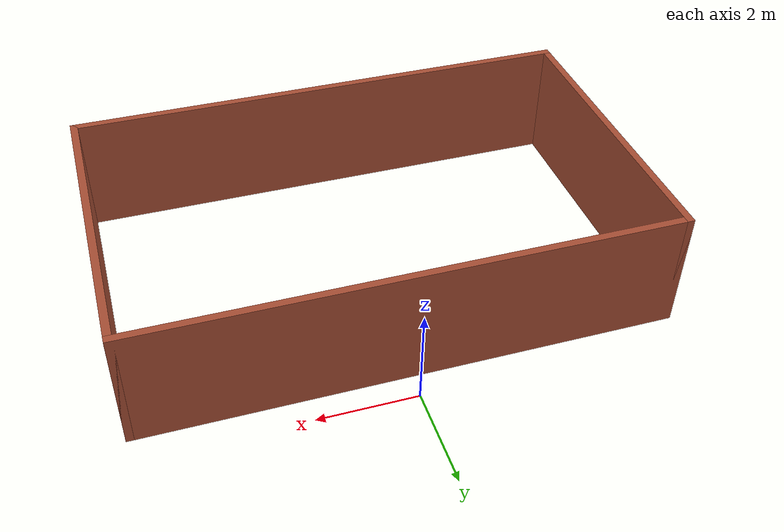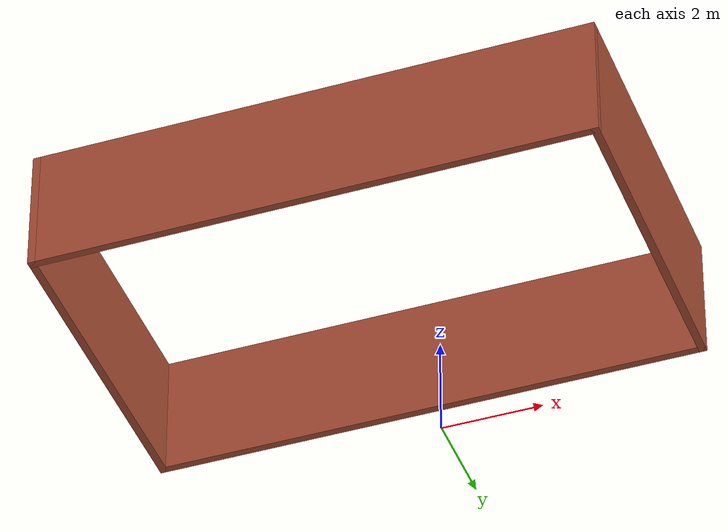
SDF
<?xml version='1.0'?>
<sdf version='1.6'>
  <model name='Walls'>
    <pose frame=''>-0.05 -3.745 0 0 -0 0</pose>
    <link name='Wall_0'>
      <collision name='Wall_0_Collision'>
        <geometry>
          <box>
            <size>10.75 0.15 2.5</size>
          </box>
        </geometry>
        <pose frame=''>0 0 1.25 0 -0 0</pose>
      </collision>
      <visual name='Wall_0_Visual'>
        <pose frame=''>0 0 1.25 0 -0 0</pose>
        <geometry>
          <box>
            <size>10.75 0.15 2.5</size>
          </box>
        </geometry>
        <material>
          <script>
            <uri>file://media/materials/scripts/gazebo.material</uri>
            <name>Gazebo/Bricks</name>
          </script>
          <ambient>0.996078 0.47451 0.0196078 1</ambient>
        </material>
        <meta>
          <layer>0</layer>
        </meta>
      </visual>
      <pose frame=''>-0 3.175 0 0 -0 0</pose>
    </link>
    <link name='Wall_1'>
      <collision name='Wall_1_Collision'>
        <geometry>
          <box>
            <size>6.5 0.15 2.5</size>
          </box>
        </geometry>
        <pose frame=''>0 0 1.25 0 -0 0</pose>
      </collision>
      <visual name='Wall_1_Visual'>
        <pose frame=''>0 0 1.25 0 -0 0</pose>
        <geometry>
          <box>
            <size>6.5 0.15 2.5</size>
          </box>
        </geometry>
        <material>
          <script>
            <uri>file://media/materials/scripts/gazebo.material</uri>
            <name>Gazebo/Bricks</name>
          </script>
          <ambient>0.996078 0.47451 0.0196078 1</ambient>
        </material>
        <meta>
          <layer>0</layer>
        </meta>
      </visual>
      <pose frame=''>5.3 0 0 0 -0 -1.5708</pose>
    </link>
    <link name='Wall_2'>
      <collision name='Wall_2_Collision'>
        <geometry>
          <box>
            <size>10.75 0.15 2.5</size>
          </box>
        </geometry>
        <pose frame=''>0 0 1.25 0 -0 0</pose>
      </collision>
      <visual name='Wall_2_Visual'>
        <pose frame=''>0 0 1.25 0 -0 0</pose>
        <geometry>
          <box>
            <size>10.75 0.15 2.5</size>
          </box>
        </geometry>
        <material>
          <script>
            <uri>file://media/materials/scripts/gazebo.material</uri>
            <name>Gazebo/Bricks</name>
          </script>
          <ambient>0.996078 0.47451 0.0196078 1</ambient>
        </material>
        <meta>
          <layer>0</layer>
        </meta>
      </visual>
      <pose frame=''>-0 -3.175 0 0 -0 3.14159</pose>
    </link>
    <link name='Wall_3'>
      <collision name='Wall_3_Collision'>
        <geometry>
          <box>
            <size>6.5 0.15 2.5</size>
          </box>
        </geometry>
        <pose frame=''>0 0 1.25 0 -0 0</pose>
      </collision>
      <visual name='Wall_3_Visual'>
        <pose frame=''>0 0 1.25 0 -0 0</pose>
        <geometry>
          <box>
            <size>6.5 0.15 2.5</size>
          </box>
        </geometry>
        <material>
          <script>
            <uri>file://media/materials/scripts/gazebo.material</uri>
            <name>Gazebo/Bricks</name>
          </script>
          <ambient>0.996078 0.47451 0.0196078 1</ambient>
        </material>
        <meta>
          <layer>0</layer>
        </meta>
      </visual>
      <pose frame=''>-5.3 0 0 0 -0 1.5708</pose>
    </link>
    <static>1</static>
  </model>
</sdf>
